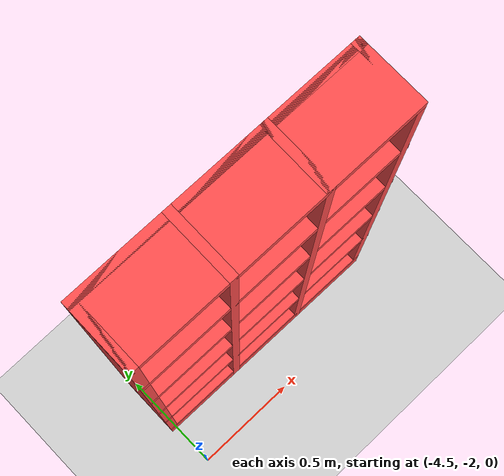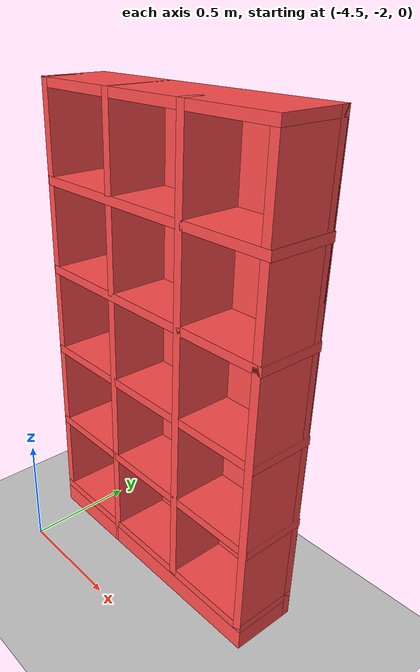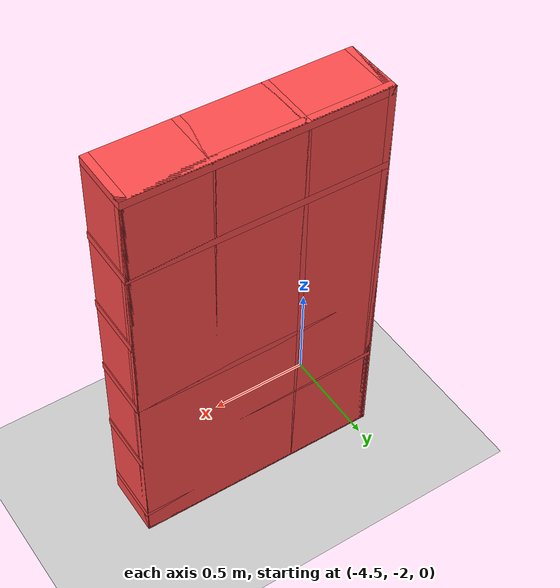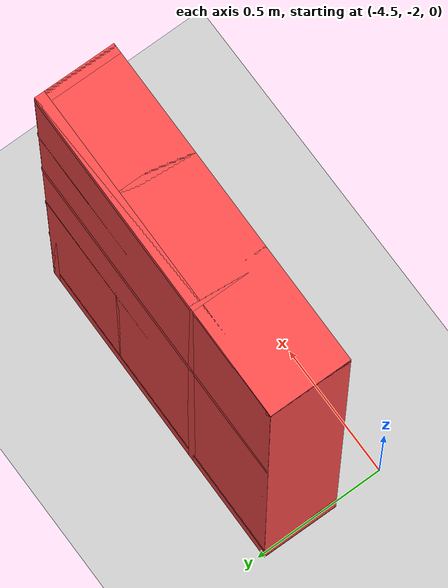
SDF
<sdf version="1.6">
 <world name="default">
  <model name="ground_plane">
   <static>1</static>
   <link name="link">
    <collision name="collision">
     <geometry><plane><normal>0 0 1</normal><size>100 100</size></plane></geometry>
     <surface><friction><ode><mu>100</mu><mu2>50</mu2></ode></friction></surface>
    </collision>
    <visual name="visual">
     <cast_shadows>0</cast_shadows>
     <geometry><plane><normal>0 0 1</normal><size>100 100</size></plane></geometry>
     <material>
      <script><uri>file://media/materials/scripts/gazebo.material</uri><name>Gazebo/Grey</name></script>
     </material>
    </visual>
   </link>
  </model>
  <model name="bookshelf">
   <link name="link_5">
    <pose>2.67455 -1.1346 0.5 0 -0 0</pose>
    <visual name="visual">
     <geometry><box><size>1.19 0.29 0.037</size></box></geometry>
     <material>
      <lighting>1</lighting>
      <script><uri>file://media/materials/scripts/gazebo.material</uri><name>Gazebo/Grey</name></script>
      <ambient>1 0.3 0.3 1</ambient>
      <diffuse>0.7 0.7 0.7 1</diffuse>
      <specular>0.01 0.01 0.01 1</specular>
      <emissive>0 0 0 1</emissive>
      <shader type="vertex"><normal_map>__default__</normal_map></shader>
     </material>
    </visual>
    <collision name="collision">
     <geometry><box><size>1.19 0.29 0.037</size></box></geometry>
     <surface>
      <friction>
       <ode><mu>1</mu><mu2>1</mu2><fdir1>0 0 0</fdir1><slip1>0</slip1><slip2>0</slip2></ode>
       <torsional>
        <coefficient>1</coefficient>
        <patch_radius>0</patch_radius>
        <surface_radius>0</surface_radius>
        <use_patch_radius>1</use_patch_radius>
        <ode><slip>0</slip></ode>
       </torsional>
      </friction>
      <bounce><restitution_coefficient>0</restitution_coefficient><threshold>1e+06</threshold></bounce>
      <contact>
       <collide_without_contact>0</collide_without_contact>
       <collide_without_contact_bitmask>1</collide_without_contact_bitmask>
       <collide_bitmask>1</collide_bitmask>
       <ode>
        <soft_cfm>0</soft_cfm>
        <soft_erp>0.2</soft_erp>
        <kp>1e+13</kp>
        <kd>1</kd>
        <max_vel>0.01</max_vel>
        <min_depth>0</min_depth>
       </ode>
       <bullet>
        <split_impulse>1</split_impulse>
        <split_impulse_penetration_threshold>-0.01</split_impulse_penetration_threshold>
        <soft_cfm>0</soft_cfm>
        <soft_erp>0.2</soft_erp>
        <kp>1e+13</kp>
        <kd>1</kd>
       </bullet>
      </contact>
     </surface>
    </collision>
    <inertial>
     <inertia><ixx>1</ixx><ixy>0</ixy><ixz>0</ixz><iyy>1</iyy><iyz>0</iyz><izz>1</izz></inertia>
     <mass>1</mass>
    </inertial>
   </link>
   <link name="link_5_clone">
    <pose>2.67055 -1.1346 0.877 0 -0 0</pose>
    <visual name="visual">
     <geometry><box><size>1.19 0.29 0.037</size></box></geometry>
     <material>
      <lighting>1</lighting>
      <script><uri>file://media/materials/scripts/gazebo.material</uri><name>Gazebo/Grey</name></script>
      <ambient>1 0.3 0.3 1</ambient>
      <diffuse>0.7 0.7 0.7 1</diffuse>
      <specular>0.01 0.01 0.01 1</specular>
      <emissive>0 0 0 1</emissive>
      <shader type="vertex"><normal_map>__default__</normal_map></shader>
     </material>
    </visual>
    <collision name="collision">
     <geometry><box><size>1.19 0.29 0.037</size></box></geometry>
     <surface>
      <friction>
       <ode><mu>1</mu><mu2>1</mu2><fdir1>0 0 0</fdir1><slip1>0</slip1><slip2>0</slip2></ode>
       <torsional>
        <coefficient>1</coefficient>
        <patch_radius>0</patch_radius>
        <surface_radius>0</surface_radius>
        <use_patch_radius>1</use_patch_radius>
        <ode><slip>0</slip></ode>
       </torsional>
      </friction>
      <bounce><restitution_coefficient>0</restitution_coefficient><threshold>1e+06</threshold></bounce>
      <contact>
       <collide_without_contact>0</collide_without_contact>
       <collide_without_contact_bitmask>1</collide_without_contact_bitmask>
       <collide_bitmask>1</collide_bitmask>
       <ode>
        <soft_cfm>0</soft_cfm>
        <soft_erp>0.2</soft_erp>
        <kp>1e+13</kp>
        <kd>1</kd>
        <max_vel>0.01</max_vel>
        <min_depth>0</min_depth>
       </ode>
       <bullet>
        <split_impulse>1</split_impulse>
        <split_impulse_penetration_threshold>-0.01</split_impulse_penetration_threshold>
        <soft_cfm>0</soft_cfm>
        <soft_erp>0.2</soft_erp>
        <kp>1e+13</kp>
        <kd>1</kd>
       </bullet>
      </contact>
     </surface>
    </collision>
    <inertial>
     <inertia><ixx>1</ixx><ixy>0</ixy><ixz>0</ixz><iyy>1</iyy><iyz>0</iyz><izz>1</izz></inertia>
     <mass>1</mass>
    </inertial>
   </link>
   <link name="link_5_clone_clone">
    <pose>2.67455 -1.1346 2.378 0 -0 0</pose>
    <visual name="visual">
     <geometry><box><size>1.19 0.29 0.037</size></box></geometry>
     <material>
      <lighting>1</lighting>
      <script><uri>file://media/materials/scripts/gazebo.material</uri><name>Gazebo/Grey</name></script>
      <ambient>1 0.3 0.3 1</ambient>
      <diffuse>0.7 0.7 0.7 1</diffuse>
      <specular>0.01 0.01 0.01 1</specular>
      <emissive>0 0 0 1</emissive>
      <shader type="vertex"><normal_map>__default__</normal_map></shader>
     </material>
    </visual>
    <collision name="collision">
     <geometry><box><size>1.19 0.29 0.037</size></box></geometry>
     <surface>
      <friction>
       <ode><mu>1</mu><mu2>1</mu2><fdir1>0 0 0</fdir1><slip1>0</slip1><slip2>0</slip2></ode>
       <torsional>
        <coefficient>1</coefficient>
        <patch_radius>0</patch_radius>
        <surface_radius>0</surface_radius>
        <use_patch_radius>1</use_patch_radius>
        <ode><slip>0</slip></ode>
       </torsional>
      </friction>
      <bounce><restitution_coefficient>0</restitution_coefficient><threshold>1e+06</threshold></bounce>
      <contact>
       <collide_without_contact>0</collide_without_contact>
       <collide_without_contact_bitmask>1</collide_without_contact_bitmask>
       <collide_bitmask>1</collide_bitmask>
       <ode>
        <soft_cfm>0</soft_cfm>
        <soft_erp>0.2</soft_erp>
        <kp>1e+13</kp>
        <kd>1</kd>
        <max_vel>0.01</max_vel>
        <min_depth>0</min_depth>
       </ode>
       <bullet>
        <split_impulse>1</split_impulse>
        <split_impulse_penetration_threshold>-0.01</split_impulse_penetration_threshold>
        <soft_cfm>0</soft_cfm>
        <soft_erp>0.2</soft_erp>
        <kp>1e+13</kp>
        <kd>1</kd>
       </bullet>
      </contact>
     </surface>
    </collision>
    <inertial>
     <inertia><ixx>1</ixx><ixy>0</ixy><ixz>0</ixz><iyy>1</iyy><iyz>0</iyz><izz>1</izz></inertia>
     <mass>1</mass>
    </inertial>
   </link>
   <link name="link_5_clone_clone_0">
    <pose>2.67055 -1.1346 1.254 0 -0 0</pose>
    <visual name="visual">
     <geometry><box><size>1.19 0.29 0.037</size></box></geometry>
     <material>
      <lighting>1</lighting>
      <script><uri>file://media/materials/scripts/gazebo.material</uri><name>Gazebo/Grey</name></script>
      <ambient>1 0.3 0.3 1</ambient>
      <diffuse>0.7 0.7 0.7 1</diffuse>
      <specular>0.01 0.01 0.01 1</specular>
      <emissive>0 0 0 1</emissive>
      <shader type="vertex"><normal_map>__default__</normal_map></shader>
     </material>
    </visual>
    <collision name="collision">
     <geometry><box><size>1.19 0.29 0.037</size></box></geometry>
     <surface>
      <friction>
       <ode><mu>1</mu><mu2>1</mu2><fdir1>0 0 0</fdir1><slip1>0</slip1><slip2>0</slip2></ode>
       <torsional>
        <coefficient>1</coefficient>
        <patch_radius>0</patch_radius>
        <surface_radius>0</surface_radius>
        <use_patch_radius>1</use_patch_radius>
        <ode><slip>0</slip></ode>
       </torsional>
      </friction>
      <bounce><restitution_coefficient>0</restitution_coefficient><threshold>1e+06</threshold></bounce>
      <contact>
       <collide_without_contact>0</collide_without_contact>
       <collide_without_contact_bitmask>1</collide_without_contact_bitmask>
       <collide_bitmask>1</collide_bitmask>
       <ode>
        <soft_cfm>0</soft_cfm>
        <soft_erp>0.2</soft_erp>
        <kp>1e+13</kp>
        <kd>1</kd>
        <max_vel>0.01</max_vel>
        <min_depth>0</min_depth>
       </ode>
       <bullet>
        <split_impulse>1</split_impulse>
        <split_impulse_penetration_threshold>-0.01</split_impulse_penetration_threshold>
        <soft_cfm>0</soft_cfm>
        <soft_erp>0.2</soft_erp>
        <kp>1e+13</kp>
        <kd>1</kd>
       </bullet>
      </contact>
     </surface>
    </collision>
    <inertial>
     <inertia><ixx>1</ixx><ixy>0</ixy><ixz>0</ixz><iyy>1</iyy><iyz>0</iyz><izz>1</izz></inertia>
     <mass>1</mass>
    </inertial>
   </link>
   <link name="link_5_clone_clone_0_clone">
    <pose>2.67055 -1.1346 2.008 0 -0 0</pose>
    <visual name="visual">
     <geometry><box><size>1.19 0.29 0.037</size></box></geometry>
     <material>
      <lighting>1</lighting>
      <script><uri>file://media/materials/scripts/gazebo.material</uri><name>Gazebo/Grey</name></script>
      <ambient>1 0.3 0.3 1</ambient>
      <diffuse>0.7 0.7 0.7 1</diffuse>
      <specular>0.01 0.01 0.01 1</specular>
      <emissive>0 0 0 1</emissive>
      <shader type="vertex"><normal_map>__default__</normal_map></shader>
     </material>
    </visual>
    <collision name="collision">
     <geometry><box><size>1.19 0.29 0.037</size></box></geometry>
     <surface>
      <friction>
       <ode><mu>1</mu><mu2>1</mu2><fdir1>0 0 0</fdir1><slip1>0</slip1><slip2>0</slip2></ode>
       <torsional>
        <coefficient>1</coefficient>
        <patch_radius>0</patch_radius>
        <surface_radius>0</surface_radius>
        <use_patch_radius>1</use_patch_radius>
        <ode><slip>0</slip></ode>
       </torsional>
      </friction>
      <bounce><restitution_coefficient>0</restitution_coefficient><threshold>1e+06</threshold></bounce>
      <contact>
       <collide_without_contact>0</collide_without_contact>
       <collide_without_contact_bitmask>1</collide_without_contact_bitmask>
       <collide_bitmask>1</collide_bitmask>
       <ode>
        <soft_cfm>0</soft_cfm>
        <soft_erp>0.2</soft_erp>
        <kp>1e+13</kp>
        <kd>1</kd>
        <max_vel>0.01</max_vel>
        <min_depth>0</min_depth>
       </ode>
       <bullet>
        <split_impulse>1</split_impulse>
        <split_impulse_penetration_threshold>-0.01</split_impulse_penetration_threshold>
        <soft_cfm>0</soft_cfm>
        <soft_erp>0.2</soft_erp>
        <kp>1e+13</kp>
        <kd>1</kd>
       </bullet>
      </contact>
     </surface>
    </collision>
    <inertial>
     <inertia><ixx>1</ixx><ixy>0</ixy><ixz>0</ixz><iyy>1</iyy><iyz>0</iyz><izz>1</izz></inertia>
     <mass>1</mass>
    </inertial>
   </link>
   <link name="link_5_clone_clone_0_clone_0">
    <pose>2.67055 -1.1346 1.631 0 -0 0</pose>
    <visual name="visual">
     <geometry><box><size>1.19 0.29 0.037</size></box></geometry>
     <material>
      <lighting>1</lighting>
      <script><uri>file://media/materials/scripts/gazebo.material</uri><name>Gazebo/Grey</name></script>
      <ambient>1 0.3 0.3 1</ambient>
      <diffuse>0.7 0.7 0.7 1</diffuse>
      <specular>0.01 0.01 0.01 1</specular>
      <emissive>0 0 0 1</emissive>
      <shader type="vertex"><normal_map>__default__</normal_map></shader>
     </material>
    </visual>
    <collision name="collision">
     <geometry><box><size>1.19 0.29 0.037</size></box></geometry>
     <surface>
      <friction>
       <ode><mu>1</mu><mu2>1</mu2><fdir1>0 0 0</fdir1><slip1>0</slip1><slip2>0</slip2></ode>
       <torsional>
        <coefficient>1</coefficient>
        <patch_radius>0</patch_radius>
        <surface_radius>0</surface_radius>
        <use_patch_radius>1</use_patch_radius>
        <ode><slip>0</slip></ode>
       </torsional>
      </friction>
      <bounce><restitution_coefficient>0</restitution_coefficient><threshold>1e+06</threshold></bounce>
      <contact>
       <collide_without_contact>0</collide_without_contact>
       <collide_without_contact_bitmask>1</collide_without_contact_bitmask>
       <collide_bitmask>1</collide_bitmask>
       <ode>
        <soft_cfm>0</soft_cfm>
        <soft_erp>0.2</soft_erp>
        <kp>1e+13</kp>
        <kd>1</kd>
        <max_vel>0.01</max_vel>
        <min_depth>0</min_depth>
       </ode>
       <bullet>
        <split_impulse>1</split_impulse>
        <split_impulse_penetration_threshold>-0.01</split_impulse_penetration_threshold>
        <soft_cfm>0</soft_cfm>
        <soft_erp>0.2</soft_erp>
        <kp>1e+13</kp>
        <kd>1</kd>
       </bullet>
      </contact>
     </surface>
    </collision>
    <inertial>
     <inertia><ixx>1</ixx><ixy>0</ixy><ixz>0</ixz><iyy>1</iyy><iyz>0</iyz><izz>1</izz></inertia>
     <mass>1</mass>
    </inertial>
   </link>
   <link name="link_6">
    <pose>2.67455 -1.1346 0.439 0 -0 0</pose>
    <visual name="visual">
     <geometry><box><size>1.19 0.29 0.085</size></box></geometry>
     <material>
      <lighting>1</lighting>
      <script><uri>file://media/materials/scripts/gazebo.material</uri><name>Gazebo/Grey</name></script>
      <ambient>1 0.3 0.3 1</ambient>
      <diffuse>0.7 0.7 0.7 1</diffuse>
      <specular>0.01 0.01 0.01 1</specular>
      <emissive>0 0 0 1</emissive>
      <shader type="vertex"><normal_map>__default__</normal_map></shader>
     </material>
    </visual>
    <collision name="collision">
     <geometry><box><size>1.19 0.29 0.085</size></box></geometry>
     <surface>
      <friction>
       <ode><mu>1</mu><mu2>1</mu2><fdir1>0 0 0</fdir1><slip1>0</slip1><slip2>0</slip2></ode>
       <torsional>
        <coefficient>1</coefficient>
        <patch_radius>0</patch_radius>
        <surface_radius>0</surface_radius>
        <use_patch_radius>1</use_patch_radius>
        <ode><slip>0</slip></ode>
       </torsional>
      </friction>
      <bounce><restitution_coefficient>0</restitution_coefficient><threshold>1e+06</threshold></bounce>
      <contact>
       <collide_without_contact>0</collide_without_contact>
       <collide_without_contact_bitmask>1</collide_without_contact_bitmask>
       <collide_bitmask>1</collide_bitmask>
       <ode>
        <soft_cfm>0</soft_cfm>
        <soft_erp>0.2</soft_erp>
        <kp>1e+13</kp>
        <kd>1</kd>
        <max_vel>0.01</max_vel>
        <min_depth>0</min_depth>
       </ode>
       <bullet>
        <split_impulse>1</split_impulse>
        <split_impulse_penetration_threshold>-0.01</split_impulse_penetration_threshold>
        <soft_cfm>0</soft_cfm>
        <soft_erp>0.2</soft_erp>
        <kp>1e+13</kp>
        <kd>1</kd>
       </bullet>
      </contact>
     </surface>
    </collision>
    <inertial>
     <inertia><ixx>1</ixx><ixy>0</ixy><ixz>0</ixz><iyy>1</iyy><iyz>0</iyz><izz>1</izz></inertia>
     <mass>1</mass>
    </inertial>
   </link>
   <link name="link_7">
    <pose>3.25105 -1.1346 1.3965 0 -0 0</pose>
    <visual name="visual">
     <geometry><box><size>0.037 0.29 2</size></box></geometry>
     <material>
      <lighting>1</lighting>
      <script><uri>file://media/materials/scripts/gazebo.material</uri><name>Gazebo/Grey</name></script>
      <ambient>1 0.3 0.3 1</ambient>
      <diffuse>0.7 0.7 0.7 1</diffuse>
      <specular>0.01 0.01 0.01 1</specular>
      <emissive>0 0 0 1</emissive>
      <shader type="vertex"><normal_map>__default__</normal_map></shader>
     </material>
    </visual>
    <collision name="collision">
     <geometry><box><size>0.037 0.29 2</size></box></geometry>
     <surface>
      <friction>
       <ode><mu>1</mu><mu2>1</mu2><fdir1>0 0 0</fdir1><slip1>0</slip1><slip2>0</slip2></ode>
       <torsional>
        <coefficient>1</coefficient>
        <patch_radius>0</patch_radius>
        <surface_radius>0</surface_radius>
        <use_patch_radius>1</use_patch_radius>
        <ode><slip>0</slip></ode>
       </torsional>
      </friction>
      <bounce><restitution_coefficient>0</restitution_coefficient><threshold>1e+06</threshold></bounce>
      <contact>
       <collide_without_contact>0</collide_without_contact>
       <collide_without_contact_bitmask>1</collide_without_contact_bitmask>
       <collide_bitmask>1</collide_bitmask>
       <ode>
        <soft_cfm>0</soft_cfm>
        <soft_erp>0.2</soft_erp>
        <kp>1e+13</kp>
        <kd>1</kd>
        <max_vel>0.01</max_vel>
        <min_depth>0</min_depth>
       </ode>
       <bullet>
        <split_impulse>1</split_impulse>
        <split_impulse_penetration_threshold>-0.01</split_impulse_penetration_threshold>
        <soft_cfm>0</soft_cfm>
        <soft_erp>0.2</soft_erp>
        <kp>1e+13</kp>
        <kd>1</kd>
       </bullet>
      </contact>
     </surface>
    </collision>
    <inertial>
     <inertia><ixx>1</ixx><ixy>0</ixy><ixz>0</ixz><iyy>1</iyy><iyz>0</iyz><izz>1</izz></inertia>
     <mass>1</mass>
    </inertial>
   </link>
   <link name="link_7_clone">
    <pose>2.86405 -1.1346 1.3965 0 -0 0</pose>
    <visual name="visual">
     <geometry><box><size>0.037 0.29 2</size></box></geometry>
     <material>
      <lighting>1</lighting>
      <script><uri>file://media/materials/scripts/gazebo.material</uri><name>Gazebo/Grey</name></script>
      <ambient>1 0.3 0.3 1</ambient>
      <diffuse>0.7 0.7 0.7 1</diffuse>
      <specular>0.01 0.01 0.01 1</specular>
      <emissive>0 0 0 1</emissive>
      <shader type="vertex"><normal_map>__default__</normal_map></shader>
     </material>
    </visual>
    <collision name="collision">
     <geometry><box><size>0.037 0.29 2</size></box></geometry>
     <surface>
      <friction>
       <ode><mu>1</mu><mu2>1</mu2><fdir1>0 0 0</fdir1><slip1>0</slip1><slip2>0</slip2></ode>
       <torsional>
        <coefficient>1</coefficient>
        <patch_radius>0</patch_radius>
        <surface_radius>0</surface_radius>
        <use_patch_radius>1</use_patch_radius>
        <ode><slip>0</slip></ode>
       </torsional>
      </friction>
      <bounce><restitution_coefficient>0</restitution_coefficient><threshold>1e+06</threshold></bounce>
      <contact>
       <collide_without_contact>0</collide_without_contact>
       <collide_without_contact_bitmask>1</collide_without_contact_bitmask>
       <collide_bitmask>1</collide_bitmask>
       <ode>
        <soft_cfm>0</soft_cfm>
        <soft_erp>0.2</soft_erp>
        <kp>1e+13</kp>
        <kd>1</kd>
        <max_vel>0.01</max_vel>
        <min_depth>0</min_depth>
       </ode>
       <bullet>
        <split_impulse>1</split_impulse>
        <split_impulse_penetration_threshold>-0.01</split_impulse_penetration_threshold>
        <soft_cfm>0</soft_cfm>
        <soft_erp>0.2</soft_erp>
        <kp>1e+13</kp>
        <kd>1</kd>
       </bullet>
      </contact>
     </surface>
    </collision>
    <inertial>
     <inertia><ixx>1</ixx><ixy>0</ixy><ixz>0</ixz><iyy>1</iyy><iyz>0</iyz><izz>1</izz></inertia>
     <mass>1</mass>
    </inertial>
   </link>
   <link name="link_7_clone_clone">
    <pose>2.47705 -1.1346 1.3965 0 -0 0</pose>
    <visual name="visual">
     <geometry><box><size>0.037 0.29 2</size></box></geometry>
     <material>
      <lighting>1</lighting>
      <script><uri>file://media/materials/scripts/gazebo.material</uri><name>Gazebo/Grey</name></script>
      <ambient>1 0.3 0.3 1</ambient>
      <diffuse>0.7 0.7 0.7 1</diffuse>
      <specular>0.01 0.01 0.01 1</specular>
      <emissive>0 0 0 1</emissive>
      <shader type="vertex"><normal_map>__default__</normal_map></shader>
     </material>
    </visual>
    <collision name="collision">
     <geometry><box><size>0.037 0.29 2</size></box></geometry>
     <surface>
      <friction>
       <ode><mu>1</mu><mu2>1</mu2><fdir1>0 0 0</fdir1><slip1>0</slip1><slip2>0</slip2></ode>
       <torsional>
        <coefficient>1</coefficient>
        <patch_radius>0</patch_radius>
        <surface_radius>0</surface_radius>
        <use_patch_radius>1</use_patch_radius>
        <ode><slip>0</slip></ode>
       </torsional>
      </friction>
      <bounce><restitution_coefficient>0</restitution_coefficient><threshold>1e+06</threshold></bounce>
      <contact>
       <collide_without_contact>0</collide_without_contact>
       <collide_without_contact_bitmask>1</collide_without_contact_bitmask>
       <collide_bitmask>1</collide_bitmask>
       <ode>
        <soft_cfm>0</soft_cfm>
        <soft_erp>0.2</soft_erp>
        <kp>1e+13</kp>
        <kd>1</kd>
        <max_vel>0.01</max_vel>
        <min_depth>0</min_depth>
       </ode>
       <bullet>
        <split_impulse>1</split_impulse>
        <split_impulse_penetration_threshold>-0.01</split_impulse_penetration_threshold>
        <soft_cfm>0</soft_cfm>
        <soft_erp>0.2</soft_erp>
        <kp>1e+13</kp>
        <kd>1</kd>
       </bullet>
      </contact>
     </surface>
    </collision>
    <inertial>
     <inertia><ixx>1</ixx><ixy>0</ixy><ixz>0</ixz><iyy>1</iyy><iyz>0</iyz><izz>1</izz></inertia>
     <mass>1</mass>
    </inertial>
   </link>
   <link name="link_7_clone_clone_clone">
    <pose>2.09805 -1.1346 1.3965 0 -0 0</pose>
    <visual name="visual">
     <geometry><box><size>0.037 0.29 2</size></box></geometry>
     <material>
      <lighting>1</lighting>
      <script><uri>file://media/materials/scripts/gazebo.material</uri><name>Gazebo/Grey</name></script>
      <ambient>1 0.3 0.3 1</ambient>
      <diffuse>0.7 0.7 0.7 1</diffuse>
      <specular>0.01 0.01 0.01 1</specular>
      <emissive>0 0 0 1</emissive>
      <shader type="vertex"><normal_map>__default__</normal_map></shader>
     </material>
    </visual>
    <collision name="collision">
     <geometry><box><size>0.037 0.29 2</size></box></geometry>
     <surface>
      <friction>
       <ode><mu>1</mu><mu2>1</mu2><fdir1>0 0 0</fdir1><slip1>0</slip1><slip2>0</slip2></ode>
       <torsional>
        <coefficient>1</coefficient>
        <patch_radius>0</patch_radius>
        <surface_radius>0</surface_radius>
        <use_patch_radius>1</use_patch_radius>
        <ode><slip>0</slip></ode>
       </torsional>
      </friction>
      <bounce><restitution_coefficient>0</restitution_coefficient><threshold>1e+06</threshold></bounce>
      <contact>
       <collide_without_contact>0</collide_without_contact>
       <collide_without_contact_bitmask>1</collide_without_contact_bitmask>
       <collide_bitmask>1</collide_bitmask>
       <ode>
        <soft_cfm>0</soft_cfm>
        <soft_erp>0.2</soft_erp>
        <kp>1e+13</kp>
        <kd>1</kd>
        <max_vel>0.01</max_vel>
        <min_depth>0</min_depth>
       </ode>
       <bullet>
        <split_impulse>1</split_impulse>
        <split_impulse_penetration_threshold>-0.01</split_impulse_penetration_threshold>
        <soft_cfm>0</soft_cfm>
        <soft_erp>0.2</soft_erp>
        <kp>1e+13</kp>
        <kd>1</kd>
       </bullet>
      </contact>
     </surface>
    </collision>
    <inertial>
     <inertia><ixx>1</ixx><ixy>0</ixy><ixz>0</ixz><iyy>1</iyy><iyz>0</iyz><izz>1</izz></inertia>
     <mass>1</mass>
    </inertial>
   </link>
   <link name="link_9">
    <pose>2.67455 -1.2611 1.3965 0 -0 0</pose>
    <visual name="visual">
     <geometry><box><size>1.19 0.037 2</size></box></geometry>
     <material>
      <lighting>1</lighting>
      <script><uri>file://media/materials/scripts/gazebo.material</uri><name>Gazebo/Grey</name></script>
      <ambient>1 0.3 0.3 1</ambient>
      <diffuse>0.7 0.7 0.7 1</diffuse>
      <specular>0.01 0.01 0.01 1</specular>
      <emissive>0 0 0 1</emissive>
      <shader type="vertex"><normal_map>__default__</normal_map></shader>
     </material>
    </visual>
    <collision name="collision">
     <geometry><box><size>1.19 0.037 2</size></box></geometry>
     <surface>
      <friction>
       <ode><mu>1</mu><mu2>1</mu2><fdir1>0 0 0</fdir1><slip1>0</slip1><slip2>0</slip2></ode>
       <torsional>
        <coefficient>1</coefficient>
        <patch_radius>0</patch_radius>
        <surface_radius>0</surface_radius>
        <use_patch_radius>1</use_patch_radius>
        <ode><slip>0</slip></ode>
       </torsional>
      </friction>
      <bounce><restitution_coefficient>0</restitution_coefficient><threshold>1e+06</threshold></bounce>
      <contact>
       <collide_without_contact>0</collide_without_contact>
       <collide_without_contact_bitmask>1</collide_without_contact_bitmask>
       <collide_bitmask>1</collide_bitmask>
       <ode>
        <soft_cfm>0</soft_cfm>
        <soft_erp>0.2</soft_erp>
        <kp>1e+13</kp>
        <kd>1</kd>
        <max_vel>0.01</max_vel>
        <min_depth>0</min_depth>
       </ode>
       <bullet>
        <split_impulse>1</split_impulse>
        <split_impulse_penetration_threshold>-0.01</split_impulse_penetration_threshold>
        <soft_cfm>0</soft_cfm>
        <soft_erp>0.2</soft_erp>
        <kp>1e+13</kp>
        <kd>1</kd>
       </bullet>
      </contact>
     </surface>
    </collision>
    <inertial>
     <inertia><ixx>1</ixx><ixy>0</ixy><ixz>0</ixz><iyy>1</iyy><iyz>0</iyz><izz>1</izz></inertia>
     <mass>1</mass>
    </inertial>
   </link>
   <joint name="link_5_JOINT_15" type="fixed">
    <parent>link_5</parent>
    <child>link_6</child>
    <physics>
     <ode><limit><cfm>0</cfm><erp>0.2</erp></limit><suspension><cfm>0</cfm><erp>0.2</erp></suspension></ode>
    </physics>
   </joint>
   <joint name="link_5_clone_JOINT_35" type="fixed">
    <parent>link_5_clone</parent>
    <child>link_7</child>
    <physics>
     <ode><limit><cfm>0</cfm><erp>0.2</erp></limit><suspension><cfm>0</cfm><erp>0.2</erp></suspension></ode>
    </physics>
   </joint>
   <joint name="link_5_clone_JOINT_36" type="fixed">
    <parent>link_5_clone</parent>
    <child>link_7_clone_clone</child>
    <physics>
     <ode><limit><cfm>0</cfm><erp>0.2</erp></limit><suspension><cfm>0</cfm><erp>0.2</erp></suspension></ode>
    </physics>
   </joint>
   <joint name="link_5_clone_clone_0_JOINT_38" type="fixed">
    <parent>link_5_clone_clone_0</parent>
    <child>link_7_clone_clone_clone</child>
    <physics>
     <ode><limit><cfm>0</cfm><erp>0.2</erp></limit><suspension><cfm>0</cfm><erp>0.2</erp></suspension></ode>
    </physics>
   </joint>
   <joint name="link_5_clone_clone_0_JOINT_43" type="fixed">
    <parent>link_5_clone_clone_0</parent>
    <child>link_7</child>
    <physics>
     <ode><limit><cfm>0</cfm><erp>0.2</erp></limit><suspension><cfm>0</cfm><erp>0.2</erp></suspension></ode>
    </physics>
   </joint>
   <joint name="link_5_clone_clone_0_JOINT_44" type="fixed">
    <parent>link_5_clone_clone_0</parent>
    <child>link_7</child>
    <physics>
     <ode><limit><cfm>0</cfm><erp>0.2</erp></limit><suspension><cfm>0</cfm><erp>0.2</erp></suspension></ode>
    </physics>
   </joint>
   <joint name="link_5_clone_clone_0_clone_0_JOINT_39" type="fixed">
    <parent>link_5_clone_clone_0_clone_0</parent>
    <child>link_7_clone_clone_clone</child>
    <physics>
     <ode><limit><cfm>0</cfm><erp>0.2</erp></limit><suspension><cfm>0</cfm><erp>0.2</erp></suspension></ode>
    </physics>
   </joint>
   <joint name="link_5_clone_clone_0_clone_0_JOINT_42" type="fixed">
    <parent>link_5_clone_clone_0_clone_0</parent>
    <child>link_7</child>
    <physics>
     <ode><limit><cfm>0</cfm><erp>0.2</erp></limit><suspension><cfm>0</cfm><erp>0.2</erp></suspension></ode>
    </physics>
   </joint>
   <joint name="link_5_clone_clone_0_clone_JOINT_40" type="fixed">
    <parent>link_5_clone_clone_0_clone</parent>
    <child>link_7_clone_clone_clone</child>
    <physics>
     <ode><limit><cfm>0</cfm><erp>0.2</erp></limit><suspension><cfm>0</cfm><erp>0.2</erp></suspension></ode>
    </physics>
   </joint>
   <joint name="link_5_clone_clone_0_clone_JOINT_41" type="fixed">
    <parent>link_5_clone_clone_0_clone</parent>
    <child>link_7</child>
    <physics>
     <ode><limit><cfm>0</cfm><erp>0.2</erp></limit><suspension><cfm>0</cfm><erp>0.2</erp></suspension></ode>
    </physics>
   </joint>
   <joint name="link_5_clone_clone_JOINT_37" type="fixed">
    <parent>link_5_clone_clone</parent>
    <child>link_7_clone_clone_clone</child>
    <physics>
     <ode><limit><cfm>0</cfm><erp>0.2</erp></limit><suspension><cfm>0</cfm><erp>0.2</erp></suspension></ode>
    </physics>
   </joint>
   <joint name="link_5_clone_clone_JOINT_46" type="fixed">
    <parent>link_5_clone_clone</parent>
    <child>link_7_clone_clone</child>
    <physics>
     <ode><limit><cfm>0</cfm><erp>0.2</erp></limit><suspension><cfm>0</cfm><erp>0.2</erp></suspension></ode>
    </physics>
   </joint>
   <joint name="link_6_JOINT_16" type="fixed">
    <parent>link_6</parent>
    <child>link_7</child>
    <physics>
     <ode><limit><cfm>0</cfm><erp>0.2</erp></limit><suspension><cfm>0</cfm><erp>0.2</erp></suspension></ode>
    </physics>
   </joint>
   <joint name="link_6_JOINT_22" type="fixed">
    <parent>link_6</parent>
    <child>link_7_clone_clone</child>
    <physics>
     <ode><limit><cfm>0</cfm><erp>0.2</erp></limit><suspension><cfm>0</cfm><erp>0.2</erp></suspension></ode>
    </physics>
   </joint>
   <joint name="link_6_JOINT_23" type="fixed">
    <parent>link_6</parent>
    <child>link_7_clone_clone_clone</child>
    <physics>
     <ode><limit><cfm>0</cfm><erp>0.2</erp></limit><suspension><cfm>0</cfm><erp>0.2</erp></suspension></ode>
    </physics>
   </joint>
   <joint name="link_6_JOINT_47" type="fixed">
    <parent>link_6</parent>
    <child>link_9</child>
    <physics>
     <ode><limit><cfm>0</cfm><erp>0.2</erp></limit><suspension><cfm>0</cfm><erp>0.2</erp></suspension></ode>
    </physics>
   </joint>
   <joint name="link_7_JOINT_24" type="fixed">
    <parent>link_7</parent>
    <child>link_5_clone_clone</child>
    <physics>
     <ode><limit><cfm>0</cfm><erp>0.2</erp></limit><suspension><cfm>0</cfm><erp>0.2</erp></suspension></ode>
    </physics>
   </joint>
   <joint name="link_7_clone_JOINT_32" type="fixed">
    <parent>link_7_clone</parent>
    <child>link_6</child>
    <physics>
     <ode><limit><cfm>0</cfm><erp>0.2</erp></limit><suspension><cfm>0</cfm><erp>0.2</erp></suspension></ode>
    </physics>
   </joint>
   <joint name="link_7_clone_JOINT_45" type="fixed">
    <parent>link_7_clone</parent>
    <child>link_5_clone_clone</child>
    <physics>
     <ode><limit><cfm>0</cfm><erp>0.2</erp></limit><suspension><cfm>0</cfm><erp>0.2</erp></suspension></ode>
    </physics>
   </joint>
   <joint name="link_7_clone_clone_JOINT_33" type="fixed">
    <parent>link_7_clone_clone</parent>
    <child>link_6</child>
    <physics>
     <ode><limit><cfm>0</cfm><erp>0.2</erp></limit><suspension><cfm>0</cfm><erp>0.2</erp></suspension></ode>
    </physics>
   </joint>
   <joint name="link_7_clone_clone_clone_JOINT_34" type="fixed">
    <parent>link_7_clone_clone_clone</parent>
    <child>link_6</child>
    <physics>
     <ode><limit><cfm>0</cfm><erp>0.2</erp></limit><suspension><cfm>0</cfm><erp>0.2</erp></suspension></ode>
    </physics>
   </joint>
   <static>0</static>
   <pose>-1.26776 -2.81484 -0.307641 0 -0 3.13273</pose>
  </model>
 </world>
</sdf>
